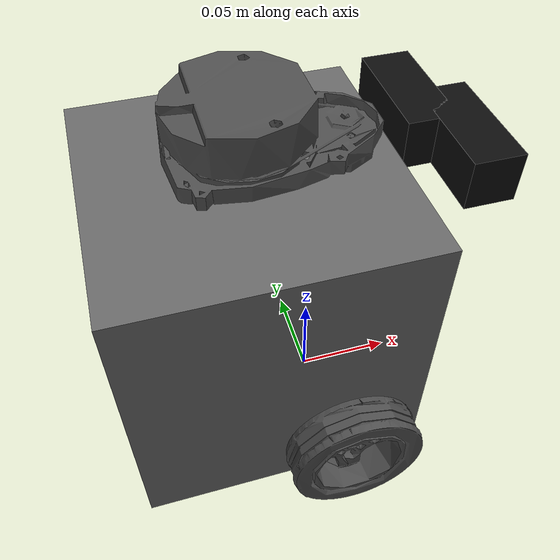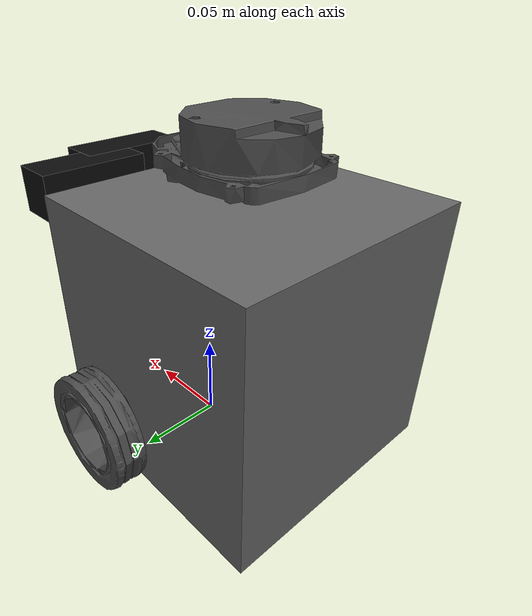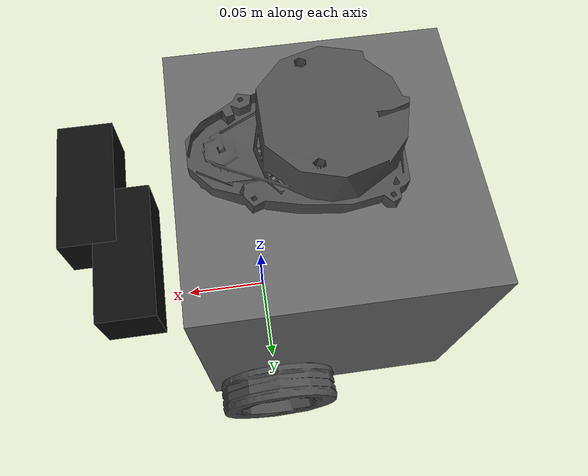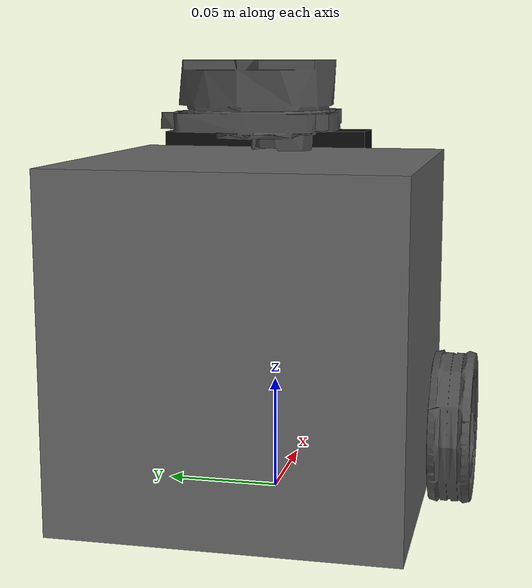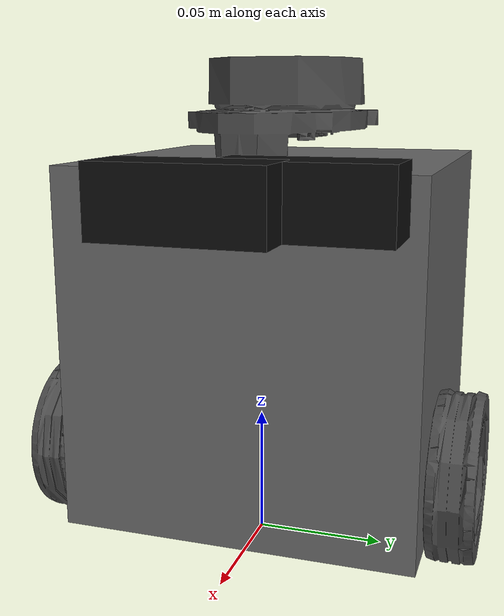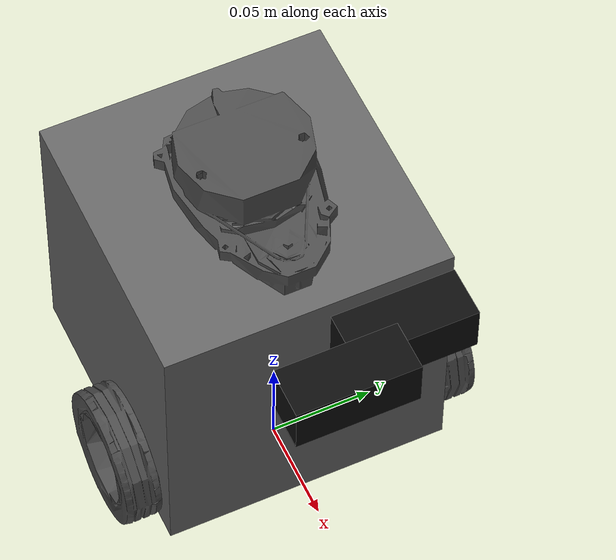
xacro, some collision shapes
<?xml version="1.0"?>
<robot xmlns:xacro="http://ros.org/wiki/xacro" name="hyper_turtle_burger_cams">

  <xacro:include filename="$(find turtlebot3_description)/urdf/turtlebot3_burger.urdf"/>
  <xacro:include filename="$(find hyper_turtle_description)/urdf/mono_camera.xacro"/>

  <!-- C920 (primary, forward-facing, higher resolution) -->
  <xacro:arg name="c920_x"     default="0.075"/>
  <xacro:arg name="c920_y"     default="0.0"/>
  <xacro:arg name="c920_z"     default="0.135"/>
  <xacro:arg name="c920_roll"  default="0.0"/>
  <xacro:arg name="c920_pitch" default="0.0"/>
  <xacro:arg name="c920_yaw"   default="0.0"/>

  <!-- C270 (secondary, forward-facing) -->
  <xacro:arg name="c270_x"     default="0.060"/>
  <xacro:arg name="c270_y"     default="0.035"/>
  <xacro:arg name="c270_z"     default="0.135"/>
  <xacro:arg name="c270_roll"  default="0.0"/>
  <xacro:arg name="c270_pitch" default="0.0"/>
  <xacro:arg name="c270_yaw"   default="0.0"/>

  <xacro:mono_camera
      parent="base_link" name="camera_c920"
      x="$(arg c920_x)" y="$(arg c920_y)" z="$(arg c920_z)"
      roll="$(arg c920_roll)" pitch="$(arg c920_pitch)" yaw="$(arg c920_yaw)"
      width="1280" height="720" hfov="1.361" update_rate="30.0"/>

  <xacro:mono_camera
      parent="base_link" name="camera_c270"
      x="$(arg c270_x)" y="$(arg c270_y)" z="$(arg c270_z)"
      roll="$(arg c270_roll)" pitch="$(arg c270_pitch)" yaw="$(arg c270_yaw)"
      width="640" height="480" hfov="1.047" update_rate="30.0"/>

</robot>

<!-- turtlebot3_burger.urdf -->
<!-- |    This document was autogenerated by xacro from /tmp/claude-0/-home-claude/8f5dd28e-fe63-5f45-8f7e-d1a0395364a9/scratchpad/repos/tb3/turtlebot3_description/urdf/turtlebot3_burger.urdf | -->
<!-- |    EDITING THIS FILE BY HAND IS NOT RECOMMENDED                                 | -->
<robot name="turtlebot3_burger">
  <!-- Init colour -->
  <material name="black">
    <color rgba="0.0 0.0 0.0 1.0"/>
  </material>
  <material name="dark">
    <color rgba="0.3 0.3 0.3 1.0"/>
  </material>
  <material name="light_black">
    <color rgba="0.4 0.4 0.4 1.0"/>
  </material>
  <material name="blue">
    <color rgba="0.0 0.0 0.8 1.0"/>
  </material>
  <material name="green">
    <color rgba="0.0 0.8 0.0 1.0"/>
  </material>
  <material name="grey">
    <color rgba="0.5 0.5 0.5 1.0"/>
  </material>
  <material name="orange">
    <color rgba="1.0 0.4235 0.0392 1.0"/>
  </material>
  <material name="brown">
    <color rgba="0.8706 0.8118 0.7647 1.0"/>
  </material>
  <material name="red">
    <color rgba="0.8 0.0 0.0 1.0"/>
  </material>
  <material name="white">
    <color rgba="1.0 1.0 1.0 1.0"/>
  </material>
  <link name="base_footprint"/>
  <joint name="base_joint" type="fixed">
    <parent link="base_footprint"/>
    <child link="base_link"/>
    <origin rpy="0 0 0" xyz="0.0 0.0 0.010"/>
  </joint>
  <link name="base_link">
    <visual>
      <origin rpy="0 0 0" xyz="-0.032 0 0.0"/>
      <geometry>
        <mesh filename="package://turtlebot3_description/meshes/bases/burger_base.stl" scale="0.001 0.001 0.001"/>
      </geometry>
      <material name="light_black"/>
    </visual>
    <collision>
      <origin rpy="0 0 0" xyz="-0.032 0 0.070"/>
      <geometry>
        <box size="0.140 0.140 0.143"/>
      </geometry>
    </collision>
    <inertial>
      <origin rpy="0 0 0" xyz="0 0 0"/>
      <mass value="8.2573504e-01"/>
      <inertia ixx="2.2124416e-03" ixy="-1.2294101e-05" ixz="3.4938785e-05" iyy="2.1193702e-03" iyz="-5.0120904e-06" izz="2.0064271e-03"/>
    </inertial>
  </link>
  <joint name="wheel_left_joint" type="continuous">
    <parent link="base_link"/>
    <child link="wheel_left_link"/>
    <origin rpy="-1.57 0 0" xyz="0.0 0.08 0.023"/>
    <axis xyz="0 0 1"/>
  </joint>
  <link name="wheel_left_link">
    <visual>
      <origin rpy="1.57 0 0" xyz="0 0 0"/>
      <geometry>
        <mesh filename="package://turtlebot3_description/meshes/wheels/left_tire.stl" scale="0.001 0.001 0.001"/>
      </geometry>
      <material name="dark"/>
    </visual>
    <collision>
      <origin rpy="0 0 0" xyz="0 0 0"/>
      <geometry>
        <cylinder length="0.018" radius="0.033"/>
      </geometry>
    </collision>
    <inertial>
      <origin xyz="0 0 0"/>
      <mass value="2.8498940e-02"/>
      <inertia ixx="1.1175580e-05" ixy="-4.2369783e-11" ixz="-5.9381719e-09" iyy="1.1192413e-05" iyz="-1.4400107e-11" izz="2.0712558e-05"/>
    </inertial>
  </link>
  <joint name="wheel_right_joint" type="continuous">
    <parent link="base_link"/>
    <child link="wheel_right_link"/>
    <origin rpy="-1.57 0 0" xyz="0.0 -0.080 0.023"/>
    <axis xyz="0 0 1"/>
  </joint>
  <link name="wheel_right_link">
    <visual>
      <origin rpy="1.57 0 0" xyz="0 0 0"/>
      <geometry>
        <mesh filename="package://turtlebot3_description/meshes/wheels/right_tire.stl" scale="0.001 0.001 0.001"/>
      </geometry>
      <material name="dark"/>
    </visual>
    <collision>
      <origin rpy="0 0 0" xyz="0 0 0"/>
      <geometry>
        <cylinder length="0.018" radius="0.033"/>
      </geometry>
    </collision>
    <inertial>
      <origin xyz="0 0 0"/>
      <mass value="2.8498940e-02"/>
      <inertia ixx="1.1175580e-05" ixy="-4.2369783e-11" ixz="-5.9381719e-09" iyy="1.1192413e-05" iyz="-1.4400107e-11" izz="2.0712558e-05"/>
    </inertial>
  </link>
  <joint name="caster_back_joint" type="fixed">
    <parent link="base_link"/>
    <child link="caster_back_link"/>
    <origin rpy="-1.57 0 0" xyz="-0.081 0 -0.004"/>
  </joint>
  <link name="caster_back_link">
    <collision>
      <origin rpy="0 0 0" xyz="0 0.001 0"/>
      <geometry>
        <box size="0.030 0.009 0.020"/>
      </geometry>
    </collision>
    <inertial>
      <origin xyz="0 0 0"/>
      <mass value="0.005"/>
      <inertia ixx="0.001" ixy="0.0" ixz="0.0" iyy="0.001" iyz="0.0" izz="0.001"/>
    </inertial>
  </link>
  <joint name="imu_joint" type="fixed">
    <parent link="base_link"/>
    <child link="imu_link"/>
    <origin rpy="0 0 0" xyz="-0.032 0 0.068"/>
  </joint>
  <link name="imu_link"/>
  <joint name="scan_joint" type="fixed">
    <parent link="base_link"/>
    <child link="base_scan"/>
    <origin rpy="0 0 0" xyz="-0.032 0 0.172"/>
  </joint>
  <link name="base_scan">
    <visual>
      <origin rpy="0 0 0" xyz="0 0 0.0"/>
      <geometry>
        <mesh filename="package://turtlebot3_description/meshes/sensors/lds.stl" scale="0.001 0.001 0.001"/>
      </geometry>
      <material name="dark"/>
    </visual>
    <collision>
      <origin rpy="0 0 0" xyz="0.015 0 -0.0065"/>
      <geometry>
        <cylinder length="0.0315" radius="0.055"/>
      </geometry>
    </collision>
    <inertial>
      <mass value="0.114"/>
      <origin xyz="0 0 0"/>
      <inertia ixx="0.001" ixy="0.0" ixz="0.0" iyy="0.001" iyz="0.0" izz="0.001"/>
    </inertial>
  </link>
</robot>

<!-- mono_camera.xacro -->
<robot xmlns:xacro="http://ros.org/wiki/xacro">

  <xacro:macro name="mono_camera"
               params="parent name x y z roll pitch yaw
                       width:=640 height:=480 hfov:=1.047 update_rate:=15.0">

    <joint name="${name}_joint" type="fixed">
      <parent link="${parent}"/>
      <child link="${name}_link"/>
      <origin xyz="${x} ${y} ${z}" rpy="${roll} ${pitch} ${yaw}"/>
    </joint>

    <link name="${name}_link">
      <visual>
        <origin xyz="0 0 0" rpy="0 0 0"/>
        <geometry>
          <box size="0.025 0.06 0.025"/>
        </geometry>
        <material name="webcam_dark">
          <color rgba="0.05 0.05 0.05 1"/>
        </material>
      </visual>
      <collision>
        <origin xyz="0 0 0" rpy="0 0 0"/>
        <geometry>
          <box size="0.025 0.06 0.025"/>
        </geometry>
      </collision>
      <inertial>
        <mass value="0.05"/>
        <origin xyz="0 0 0" rpy="0 0 0"/>
        <inertia ixx="1e-5" ixy="0" ixz="0" iyy="1e-5" iyz="0" izz="1e-5"/>
      </inertial>
    </link>

    <!-- ROS optical convention: z forward, x right, y down -->
    <joint name="${name}_optical_joint" type="fixed">
      <parent link="${name}_link"/>
      <child link="${name}_optical_frame"/>
      <origin xyz="0 0 0" rpy="${-pi/2} 0 ${-pi/2}"/>
    </joint>
    <link name="${name}_optical_frame"/>

    <gazebo reference="${name}_link">
      <sensor name="${name}_sensor" type="camera">
        <always_on>1</always_on>
        <update_rate>${update_rate}</update_rate>
        <visualize>true</visualize>
        <topic>${name}/image_raw</topic>
        <gz_frame_id>${name}_optical_frame</gz_frame_id>
        <camera>
          <camera_info_topic>${name}/camera_info</camera_info_topic>
          <horizontal_fov>${hfov}</horizontal_fov>
          <image>
            <width>${width}</width>
            <height>${height}</height>
            <format>RGB_INT8</format>
          </image>
          <clip>
            <near>0.05</near>
            <far>15.0</far>
          </clip>
          <optical_frame_id>${name}_optical_frame</optical_frame_id>
        </camera>
      </sensor>
    </gazebo>

  </xacro:macro>
</robot>
